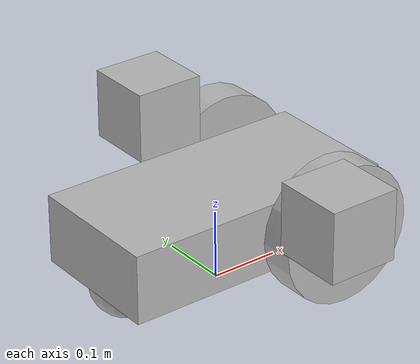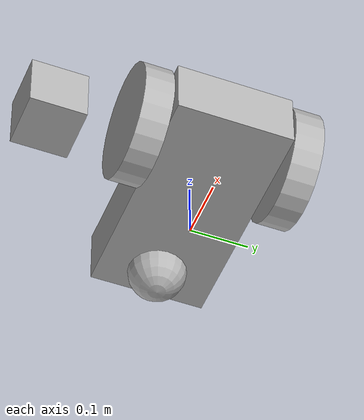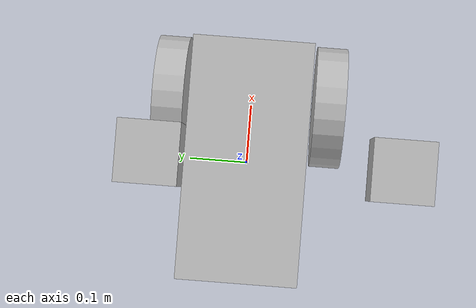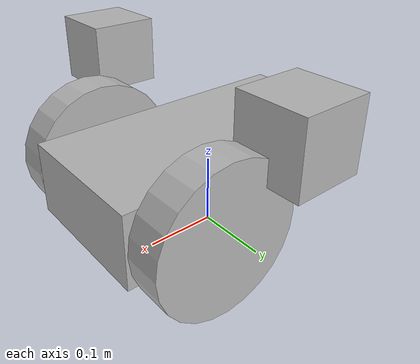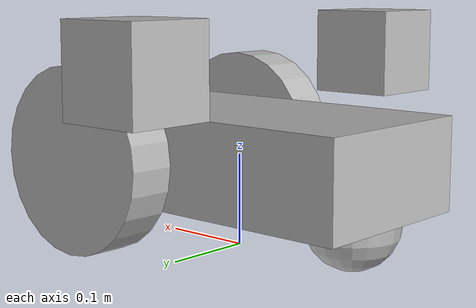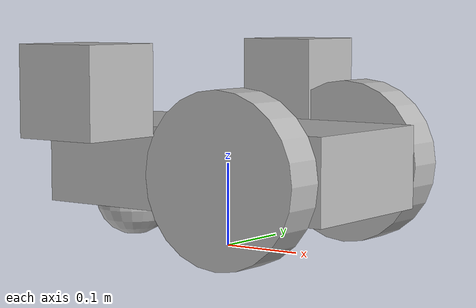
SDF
<?xml version='1.0'?>
<sdf version='1.4'>
  <model name="d_diff_drive_robot">
<!-- No Physics -->

<!-- Physics -->
    <static>false</static>
<!-- Box/Chasis -->
     <link name='chassis'>
        <pose>0 0 .1 0 0 0</pose>

        <collision name='collision'>
          <geometry>
            <box>
              <size>.4 .2 .1</size>
            </box>
          </geometry>
        </collision>

        <visual name='visual'>
          <geometry>
            <box>
              <size>.4 .2 .1</size>
            </box>
          </geometry>
        </visual>

<!-- Caster -->
      <collision name='caster_collision'>
        <pose>-0.15 0 -0.05 0 0 0</pose>
        <geometry>
          <sphere>
          <radius>.05</radius>
        </sphere>
      </geometry>

      <surface>
        <friction>
          <ode>
            <mu>0</mu>
            <mu2>0</mu2>
            <slip1>1.0</slip1>
            <slip2>1.0</slip2>
          </ode>
        </friction>
      </surface>
    </collision>

    <visual name='caster_visual'>
      <pose>-0.15 0 -0.05 0 0 0</pose>
      <geometry>
        <sphere>
          <radius>.05</radius>
        </sphere>
      </geometry>
    </visual>

  </link>

<!-- Left Wheel -->

  <link name="left_wheel">
    <pose>0.1 0.13 0.1 0 1.5707 1.5707</pose>
    <collision name="collision">
      <geometry>
        <cylinder>
          <radius>.1</radius>
          <length>.05</length>
        </cylinder>
      </geometry>
    </collision>
    <visual name="visual">
      <geometry>
        <cylinder>
          <radius>.1</radius>
          <length>.05</length>
        </cylinder>
      </geometry>
    </visual>
  </link>

<!-- Right Wheel -->
  <link name="right_wheel">
    <pose>0.1 -0.13 0.1 0 1.5707 1.5707</pose>
    <collision name="collision">
      <geometry>
        <cylinder>
          <radius>.1</radius>
          <length>.05</length>
        </cylinder>
      </geometry>
    </collision>
    <visual name="visual">
      <geometry>
        <cylinder>
          <radius>.1</radius>
          <length>.05</length>
        </cylinder>
      </geometry>
    </visual>
  </link>

<!-- Axel -->
<joint type="revolute" name="left_wheel_hinge">
    <pose>0 0 -0.03 0 0 0</pose>
    <child>left_wheel</child>
    <parent>chassis</parent>
    <axis>
      <xyz>0 1 0</xyz>
    </axis>
  </joint>

  <joint type="revolute" name="right_wheel_hinge">
    <pose>0 0 0.03 0 0 0</pose>
    <child>right_wheel</child>
    <parent>chassis</parent>
    <axis>
      <xyz>0 1 0</xyz>
    </axis>
  </joint>

<!-- Lidar -->

  <!-- Camera -->

   <include>
      <uri>model://camera</uri>
      <pose>0.0 0.15 0.2 0 0 0</pose>
      <name>cameraL</name>
    </include>
  <joint name="camera_joint_2_L" type="revolute">
    <child>cameraL::link</child>
    <parent>chassis</parent>
    <axis>
      <xyz>0 0 1</xyz>
      <limit>
        <upper>0</upper>
        <lower>0</lower>
      </limit>
    </axis>
  </joint>

   <include>
      <uri>model://camera</uri>
      <pose>0.0 -0.25 0.2 0 0 0</pose>
      <name>cameraR</name>
    </include>
  <joint name="camera_joint_2_R" type="revolute">
    <child>cameraR::link</child>
    <parent>chassis</parent>
    <axis>
      <xyz>0 0 1</xyz>
      <limit>
        <upper>0</upper>
        <lower>0</lower>
      </limit>
    </axis>
  </joint>

    <plugin filename="libmodel_diff_drive.so" name="model_diff_drive_plugin">

      <left_wheel_hinge>left_wheel_hinge</left_wheel_hinge>
      <right_wheel_hinge>right_wheel_hinge</right_wheel_hinge>
    </plugin>
  </model>

</sdf>

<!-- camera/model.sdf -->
<sdf version="1.5">
  <model name="camera">
    <pose>0 0 0.05 0 0 0</pose>
    <link name="link">
      <inertial>
        <mass>0.1</mass>
        <inertia>
          <ixx>0.000166667</ixx>
          <iyy>0.000166667</iyy>
          <izz>0.000166667</izz>
        </inertia>
      </inertial>
      <collision name="collision">
        <geometry>
          <box>
            <size>0.1 0.1 0.1</size>
          </box>
        </geometry>
      </collision>
      <visual name="visual">
        <geometry>
          <box>
            <size>0.1 0.1 0.1</size>
          </box>
        </geometry>
      </visual>
      <sensor name="camera" type="camera">
        <camera>
          <horizontal_fov>1.047</horizontal_fov>
          <image>
            <width>320</width>
            <height>240</height>
          </image>
          <clip>
            <near>0.1</near>
            <far>100</far>
          </clip>
        </camera>
        <always_on>1</always_on>
        <update_rate>30</update_rate>
        <visualize>true</visualize>
      </sensor>
    </link>
  </model>
</sdf>
